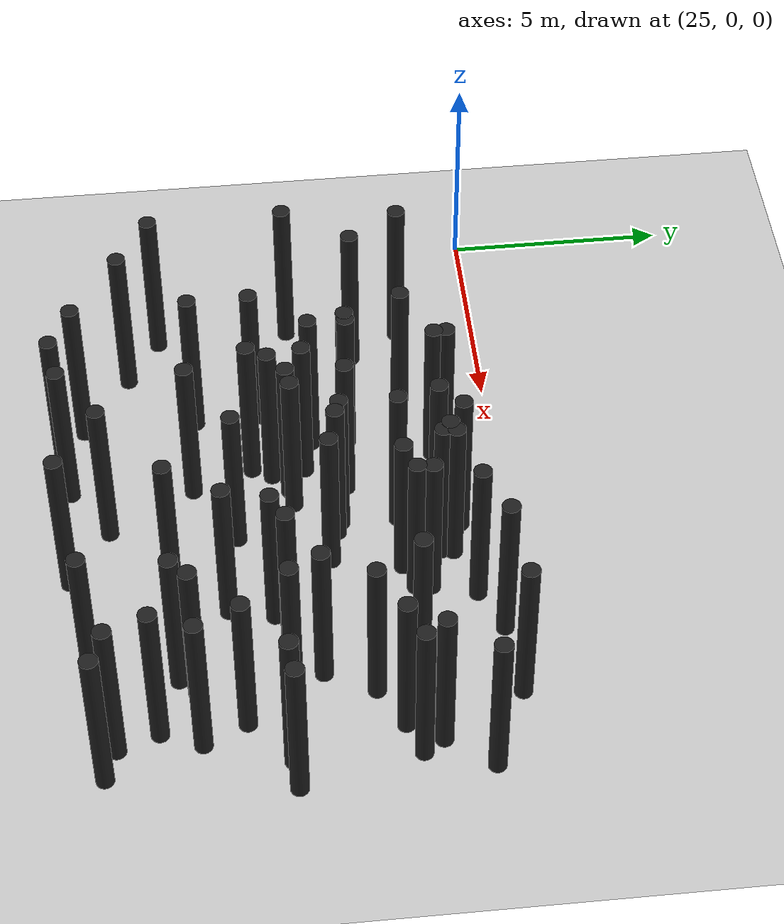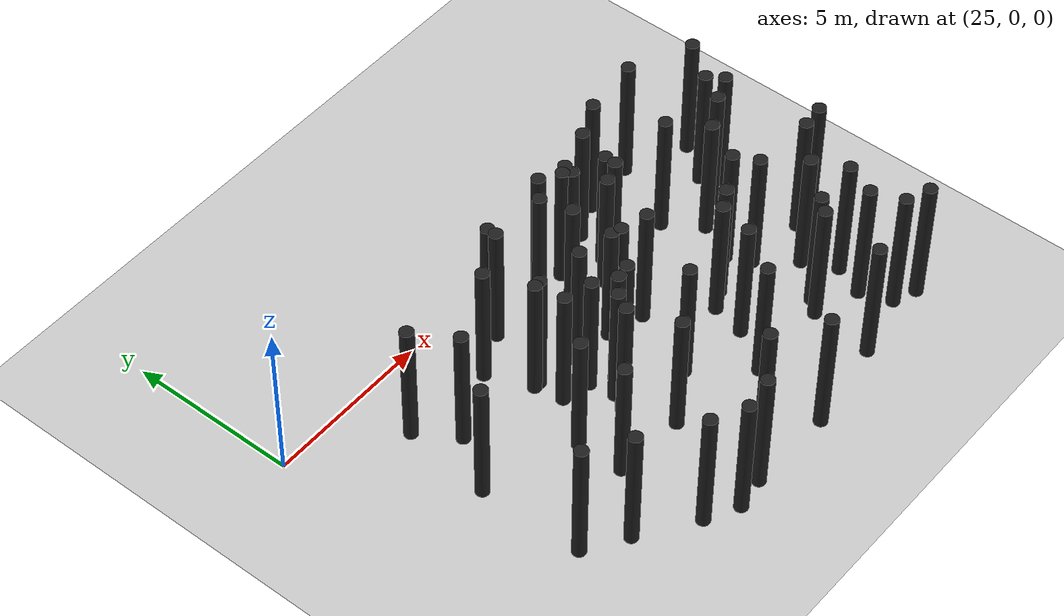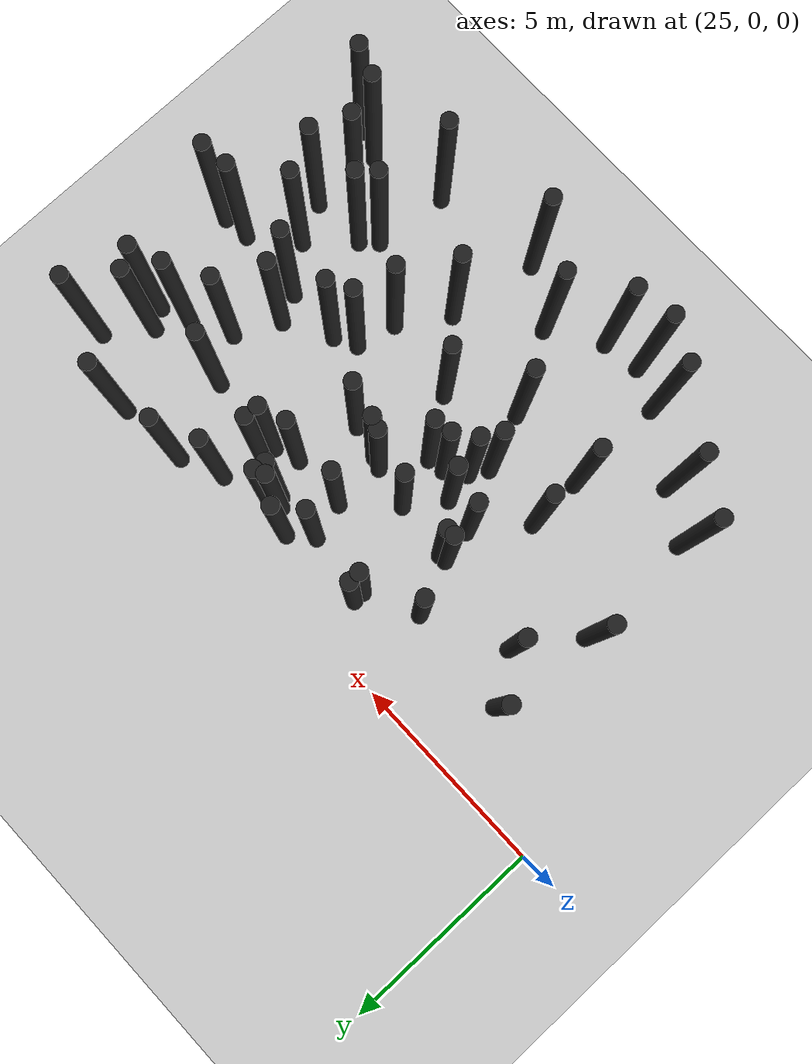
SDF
<sdf version="1.7">
 <world name="default">
  <model name="ground_plane">
   <static>1</static>
   <link name="link">
    <collision name="collision">
     <geometry><plane><normal>0 0 1</normal><size>200 200</size></plane></geometry>
     <surface><friction><ode><mu>100</mu><mu2>50</mu2></ode></friction></surface>
    </collision>
    <visual name="visual">
     <cast_shadows>0</cast_shadows>
     <geometry><plane><normal>0 0 1</normal><size>200 200</size></plane></geometry>
     <material>
      <script><uri>file://media/materials/scripts/gazebo.material</uri><name>Gazebo/Grey</name></script>
     </material>
    </visual>
   </link>
  </model>
  <model name="forest_clone_2_0">
   <pose>39.5517 -7.04721 0.00348 0 -0 0</pose>
   <static>1</static>
   <link name="cylinder::link">
    <inertial>
     <mass>1</mass>
     <inertia><ixx>0.083</ixx><ixy>0</ixy><ixz>0</ixz><iyy>0.083</iyy><iyz>0</iyz><izz>0.083</izz></inertia>
    </inertial>
    <collision name="collision">
     <geometry><cylinder><radius>0.2</radius><length>4</length></cylinder></geometry>
    </collision>
    <visual name="visual">
     <geometry><cylinder><radius>0.2</radius><length>4</length></cylinder></geometry>
     <material>
      <script><uri>file://media/materials/scripts/gazebo.material</uri><name>Gazebo/Black</name></script>
     </material>
    </visual>
    <pose>0 0 2 0 -0 0</pose>
   </link>
  </model>
  <model name="forest_clone_6_0">
   <pose>32.0741 -4.34645 -0.00115 0 -0 0</pose>
   <static>1</static>
   <link name="cylinder::link">
    <inertial>
     <mass>1</mass>
     <inertia><ixx>0.083</ixx><ixy>0</ixy><ixz>0</ixz><iyy>0.083</iyy><iyz>0</iyz><izz>0.083</izz></inertia>
    </inertial>
    <collision name="collision">
     <geometry><cylinder><radius>0.2</radius><length>4</length></cylinder></geometry>
    </collision>
    <visual name="visual">
     <geometry><cylinder><radius>0.2</radius><length>4</length></cylinder></geometry>
     <material>
      <script><uri>file://media/materials/scripts/gazebo.material</uri><name>Gazebo/Black</name></script>
     </material>
    </visual>
    <pose>0 0 2 0 -0 0</pose>
   </link>
  </model>
  <model name="forest_clone_10_0">
   <pose>39.0963 -6.09529 0.00332 0 -0 0</pose>
   <static>1</static>
   <link name="cylinder::link">
    <inertial>
     <mass>1</mass>
     <inertia><ixx>0.083</ixx><ixy>0</ixy><ixz>0</ixz><iyy>0.083</iyy><iyz>0</iyz><izz>0.083</izz></inertia>
    </inertial>
    <collision name="collision">
     <geometry><cylinder><radius>0.2</radius><length>4</length></cylinder></geometry>
    </collision>
    <visual name="visual">
     <geometry><cylinder><radius>0.2</radius><length>4</length></cylinder></geometry>
     <material>
      <script><uri>file://media/materials/scripts/gazebo.material</uri><name>Gazebo/Black</name></script>
     </material>
    </visual>
    <pose>0 0 2 0 -0 0</pose>
   </link>
  </model>
  <model name="forest_clone_21_0">
   <pose>30.4034 -9.34154 -0.0007 0 -0 0</pose>
   <static>1</static>
   <link name="cylinder::link">
    <inertial>
     <mass>1</mass>
     <inertia><ixx>0.083</ixx><ixy>0</ixy><ixz>0</ixz><iyy>0.083</iyy><iyz>0</iyz><izz>0.083</izz></inertia>
    </inertial>
    <collision name="collision">
     <geometry><cylinder><radius>0.2</radius><length>4</length></cylinder></geometry>
    </collision>
    <visual name="visual">
     <geometry><cylinder><radius>0.2</radius><length>4</length></cylinder></geometry>
     <material>
      <script><uri>file://media/materials/scripts/gazebo.material</uri><name>Gazebo/Black</name></script>
     </material>
    </visual>
    <pose>0 0 2 0 -0 0</pose>
   </link>
  </model>
  <model name="forest_clone_26_0">
   <pose>28.6033 -2.97139 0.00277 0 -0 0</pose>
   <static>1</static>
   <link name="cylinder::link">
    <inertial>
     <mass>1</mass>
     <inertia><ixx>0.083</ixx><ixy>0</ixy><ixz>0</ixz><iyy>0.083</iyy><iyz>0</iyz><izz>0.083</izz></inertia>
    </inertial>
    <collision name="collision">
     <geometry><cylinder><radius>0.2</radius><length>4</length></cylinder></geometry>
    </collision>
    <visual name="visual">
     <geometry><cylinder><radius>0.2</radius><length>4</length></cylinder></geometry>
     <material>
      <script><uri>file://media/materials/scripts/gazebo.material</uri><name>Gazebo/Black</name></script>
     </material>
    </visual>
    <pose>0 0 2 0 -0 0</pose>
   </link>
  </model>
  <model name="forest_clone_30_0">
   <pose>31.2475 -4.13791 -0.00402 0 -0 0</pose>
   <static>1</static>
   <link name="cylinder::link">
    <inertial>
     <mass>1</mass>
     <inertia><ixx>0.083</ixx><ixy>0</ixy><ixz>0</ixz><iyy>0.083</iyy><iyz>0</iyz><izz>0.083</izz></inertia>
    </inertial>
    <collision name="collision">
     <geometry><cylinder><radius>0.2</radius><length>4</length></cylinder></geometry>
    </collision>
    <visual name="visual">
     <geometry><cylinder><radius>0.2</radius><length>4</length></cylinder></geometry>
     <material>
      <script><uri>file://media/materials/scripts/gazebo.material</uri><name>Gazebo/Black</name></script>
     </material>
    </visual>
    <pose>0 0 2 0 -0 0</pose>
   </link>
  </model>
  <model name="forest_clone_31_0">
   <pose>35.7719 -2.19632 0.00463 0 -0 0</pose>
   <static>1</static>
   <link name="cylinder::link">
    <inertial>
     <mass>1</mass>
     <inertia><ixx>0.083</ixx><ixy>0</ixy><ixz>0</ixz><iyy>0.083</iyy><iyz>0</iyz><izz>0.083</izz></inertia>
    </inertial>
    <collision name="collision">
     <geometry><cylinder><radius>0.2</radius><length>4</length></cylinder></geometry>
    </collision>
    <visual name="visual">
     <geometry><cylinder><radius>0.2</radius><length>4</length></cylinder></geometry>
     <material>
      <script><uri>file://media/materials/scripts/gazebo.material</uri><name>Gazebo/Black</name></script>
     </material>
    </visual>
    <pose>0 0 2 0 -0 0</pose>
   </link>
  </model>
  <model name="forest_clone_35_0">
   <pose>40.2155 -9.10501 0.00091 0 -0 0</pose>
   <static>1</static>
   <link name="cylinder::link">
    <inertial>
     <mass>1</mass>
     <inertia><ixx>0.083</ixx><ixy>0</ixy><ixz>0</ixz><iyy>0.083</iyy><iyz>0</iyz><izz>0.083</izz></inertia>
    </inertial>
    <collision name="collision">
     <geometry><cylinder><radius>0.2</radius><length>4</length></cylinder></geometry>
    </collision>
    <visual name="visual">
     <geometry><cylinder><radius>0.2</radius><length>4</length></cylinder></geometry>
     <material>
      <script><uri>file://media/materials/scripts/gazebo.material</uri><name>Gazebo/Black</name></script>
     </material>
    </visual>
    <pose>0 0 2 0 -0 0</pose>
   </link>
  </model>
  <model name="forest_clone_38_0">
   <pose>32.3014 -9.67837 -0.00198 0 -0 0</pose>
   <static>1</static>
   <link name="cylinder::link">
    <inertial>
     <mass>1</mass>
     <inertia><ixx>0.083</ixx><ixy>0</ixy><ixz>0</ixz><iyy>0.083</iyy><iyz>0</iyz><izz>0.083</izz></inertia>
    </inertial>
    <collision name="collision">
     <geometry><cylinder><radius>0.2</radius><length>4</length></cylinder></geometry>
    </collision>
    <visual name="visual">
     <geometry><cylinder><radius>0.2</radius><length>4</length></cylinder></geometry>
     <material>
      <script><uri>file://media/materials/scripts/gazebo.material</uri><name>Gazebo/Black</name></script>
     </material>
    </visual>
    <pose>0 0 2 0 -0 0</pose>
   </link>
  </model>
  <model name="forest_clone_46_0">
   <pose>36.0803 -0.862235 -0.00083 0 -0 0</pose>
   <static>1</static>
   <link name="cylinder::link">
    <inertial>
     <mass>1</mass>
     <inertia><ixx>0.083</ixx><ixy>0</ixy><ixz>0</ixz><iyy>0.083</iyy><iyz>0</iyz><izz>0.083</izz></inertia>
    </inertial>
    <collision name="collision">
     <geometry><cylinder><radius>0.2</radius><length>4</length></cylinder></geometry>
    </collision>
    <visual name="visual">
     <geometry><cylinder><radius>0.2</radius><length>4</length></cylinder></geometry>
     <material>
      <script><uri>file://media/materials/scripts/gazebo.material</uri><name>Gazebo/Black</name></script>
     </material>
    </visual>
    <pose>0 0 2 0 -0 0</pose>
   </link>
  </model>
  <model name="forest_clone_52_0">
   <pose>33.5501 -8.8399 0.00296 0 -0 0</pose>
   <static>1</static>
   <link name="cylinder::link">
    <inertial>
     <mass>1</mass>
     <inertia><ixx>0.083</ixx><ixy>0</ixy><ixz>0</ixz><iyy>0.083</iyy><iyz>0</iyz><izz>0.083</izz></inertia>
    </inertial>
    <collision name="collision">
     <geometry><cylinder><radius>0.2</radius><length>4</length></cylinder></geometry>
    </collision>
    <visual name="visual">
     <geometry><cylinder><radius>0.2</radius><length>4</length></cylinder></geometry>
     <material>
      <script><uri>file://media/materials/scripts/gazebo.material</uri><name>Gazebo/Black</name></script>
     </material>
    </visual>
    <pose>0 0 2 0 -0 0</pose>
   </link>
  </model>
  <model name="forest_clone_56_0">
   <pose>27.6638 -7.53181 0.00204 0 -0 0</pose>
   <static>1</static>
   <link name="cylinder::link">
    <inertial>
     <mass>1</mass>
     <inertia><ixx>0.083</ixx><ixy>0</ixy><ixz>0</ixz><iyy>0.083</iyy><iyz>0</iyz><izz>0.083</izz></inertia>
    </inertial>
    <collision name="collision">
     <geometry><cylinder><radius>0.2</radius><length>4</length></cylinder></geometry>
    </collision>
    <visual name="visual">
     <geometry><cylinder><radius>0.2</radius><length>4</length></cylinder></geometry>
     <material>
      <script><uri>file://media/materials/scripts/gazebo.material</uri><name>Gazebo/Black</name></script>
     </material>
    </visual>
    <pose>0 0 2 0 -0 0</pose>
   </link>
  </model>
  <model name="forest_clone_59_0">
   <pose>40.643 -1.04341 -0.00279 0 -0 0</pose>
   <static>1</static>
   <link name="cylinder::link">
    <inertial>
     <mass>1</mass>
     <inertia><ixx>0.083</ixx><ixy>0</ixy><ixz>0</ixz><iyy>0.083</iyy><iyz>0</iyz><izz>0.083</izz></inertia>
    </inertial>
    <collision name="collision">
     <geometry><cylinder><radius>0.2</radius><length>4</length></cylinder></geometry>
    </collision>
    <visual name="visual">
     <geometry><cylinder><radius>0.2</radius><length>4</length></cylinder></geometry>
     <material>
      <script><uri>file://media/materials/scripts/gazebo.material</uri><name>Gazebo/Black</name></script>
     </material>
    </visual>
    <pose>0 0 2 0 -0 0</pose>
   </link>
  </model>
  <model name="forest_clone_66_0">
   <pose>39.4379 -2.79971 -0.00207 0 -0 0</pose>
   <static>1</static>
   <link name="cylinder::link">
    <inertial>
     <mass>1</mass>
     <inertia><ixx>0.083</ixx><ixy>0</ixy><ixz>0</ixz><iyy>0.083</iyy><iyz>0</iyz><izz>0.083</izz></inertia>
    </inertial>
    <collision name="collision">
     <geometry><cylinder><radius>0.2</radius><length>4</length></cylinder></geometry>
    </collision>
    <visual name="visual">
     <geometry><cylinder><radius>0.2</radius><length>4</length></cylinder></geometry>
     <material>
      <script><uri>file://media/materials/scripts/gazebo.material</uri><name>Gazebo/Black</name></script>
     </material>
    </visual>
    <pose>0 0 2 0 -0 0</pose>
   </link>
  </model>
  <model name="forest_clone_72_0">
   <pose>30.5704 -2.01379 -0.00198 0 -0 0</pose>
   <static>1</static>
   <link name="cylinder::link">
    <inertial>
     <mass>1</mass>
     <inertia><ixx>0.083</ixx><ixy>0</ixy><ixz>0</ixz><iyy>0.083</iyy><iyz>0</iyz><izz>0.083</izz></inertia>
    </inertial>
    <collision name="collision">
     <geometry><cylinder><radius>0.2</radius><length>4</length></cylinder></geometry>
    </collision>
    <visual name="visual">
     <geometry><cylinder><radius>0.2</radius><length>4</length></cylinder></geometry>
     <material>
      <script><uri>file://media/materials/scripts/gazebo.material</uri><name>Gazebo/Black</name></script>
     </material>
    </visual>
    <pose>0 0 2 0 -0 0</pose>
   </link>
  </model>
  <model name="forest_clone_78_0">
   <pose>31.0882 -3.31339 0.00174 0 -0 0</pose>
   <static>1</static>
   <link name="cylinder::link">
    <inertial>
     <mass>1</mass>
     <inertia><ixx>0.083</ixx><ixy>0</ixy><ixz>0</ixz><iyy>0.083</iyy><iyz>0</iyz><izz>0.083</izz></inertia>
    </inertial>
    <collision name="collision">
     <geometry><cylinder><radius>0.2</radius><length>4</length></cylinder></geometry>
    </collision>
    <visual name="visual">
     <geometry><cylinder><radius>0.2</radius><length>4</length></cylinder></geometry>
     <material>
      <script><uri>file://media/materials/scripts/gazebo.material</uri><name>Gazebo/Black</name></script>
     </material>
    </visual>
    <pose>0 0 2 0 -0 0</pose>
   </link>
  </model>
  <model name="forest_clone_94_0">
   <pose>35.1597 -2.41917 5e-05 0 -0 0</pose>
   <static>1</static>
   <link name="cylinder::link">
    <inertial>
     <mass>1</mass>
     <inertia><ixx>0.083</ixx><ixy>0</ixy><ixz>0</ixz><iyy>0.083</iyy><iyz>0</iyz><izz>0.083</izz></inertia>
    </inertial>
    <collision name="collision">
     <geometry><cylinder><radius>0.2</radius><length>4</length></cylinder></geometry>
    </collision>
    <visual name="visual">
     <geometry><cylinder><radius>0.2</radius><length>4</length></cylinder></geometry>
     <material>
      <script><uri>file://media/materials/scripts/gazebo.material</uri><name>Gazebo/Black</name></script>
     </material>
    </visual>
    <pose>0 0 2 0 -0 0</pose>
   </link>
  </model>
  <model name="forest_clone_95_0">
   <pose>40.8117 -5.14471 -0.00051 0 -0 0</pose>
   <static>1</static>
   <link name="cylinder::link">
    <inertial>
     <mass>1</mass>
     <inertia><ixx>0.083</ixx><ixy>0</ixy><ixz>0</ixz><iyy>0.083</iyy><iyz>0</iyz><izz>0.083</izz></inertia>
    </inertial>
    <collision name="collision">
     <geometry><cylinder><radius>0.2</radius><length>4</length></cylinder></geometry>
    </collision>
    <visual name="visual">
     <geometry><cylinder><radius>0.2</radius><length>4</length></cylinder></geometry>
     <material>
      <script><uri>file://media/materials/scripts/gazebo.material</uri><name>Gazebo/Black</name></script>
     </material>
    </visual>
    <pose>0 0 2 0 -0 0</pose>
   </link>
  </model>
  <model name="forest_clone_99_0">
   <pose>33.7554 -2.39118 -0.00017 0 -0 0</pose>
   <static>1</static>
   <link name="cylinder::link">
    <inertial>
     <mass>1</mass>
     <inertia><ixx>0.083</ixx><ixy>0</ixy><ixz>0</ixz><iyy>0.083</iyy><iyz>0</iyz><izz>0.083</izz></inertia>
    </inertial>
    <collision name="collision">
     <geometry><cylinder><radius>0.2</radius><length>4</length></cylinder></geometry>
    </collision>
    <visual name="visual">
     <geometry><cylinder><radius>0.2</radius><length>4</length></cylinder></geometry>
     <material>
      <script><uri>file://media/materials/scripts/gazebo.material</uri><name>Gazebo/Black</name></script>
     </material>
    </visual>
    <pose>0 0 2 0 -0 0</pose>
   </link>
  </model>
  <model name="forest_clone_100_0">
   <pose>33.516 -1.47695 0.00432 0 -0 0</pose>
   <static>1</static>
   <link name="cylinder::link">
    <inertial>
     <mass>1</mass>
     <inertia><ixx>0.083</ixx><ixy>0</ixy><ixz>0</ixz><iyy>0.083</iyy><iyz>0</iyz><izz>0.083</izz></inertia>
    </inertial>
    <collision name="collision">
     <geometry><cylinder><radius>0.2</radius><length>4</length></cylinder></geometry>
    </collision>
    <visual name="visual">
     <geometry><cylinder><radius>0.2</radius><length>4</length></cylinder></geometry>
     <material>
      <script><uri>file://media/materials/scripts/gazebo.material</uri><name>Gazebo/Black</name></script>
     </material>
    </visual>
    <pose>0 0 2 0 -0 0</pose>
   </link>
  </model>
  <model name="forest_clone_107_0">
   <pose>31.8364 -1.127 0.00163 0 -0 0</pose>
   <static>1</static>
   <link name="cylinder::link">
    <inertial>
     <mass>1</mass>
     <inertia><ixx>0.083</ixx><ixy>0</ixy><ixz>0</ixz><iyy>0.083</iyy><iyz>0</iyz><izz>0.083</izz></inertia>
    </inertial>
    <collision name="collision">
     <geometry><cylinder><radius>0.2</radius><length>4</length></cylinder></geometry>
    </collision>
    <visual name="visual">
     <geometry><cylinder><radius>0.2</radius><length>4</length></cylinder></geometry>
     <material>
      <script><uri>file://media/materials/scripts/gazebo.material</uri><name>Gazebo/Black</name></script>
     </material>
    </visual>
    <pose>0 0 2 0 -0 0</pose>
   </link>
  </model>
  <model name="forest_clone_119_0">
   <pose>34.6096 -1.36163 0.00426 0 -0 0</pose>
   <static>1</static>
   <link name="cylinder::link">
    <inertial>
     <mass>1</mass>
     <inertia><ixx>0.083</ixx><ixy>0</ixy><ixz>0</ixz><iyy>0.083</iyy><iyz>0</iyz><izz>0.083</izz></inertia>
    </inertial>
    <collision name="collision">
     <geometry><cylinder><radius>0.2</radius><length>4</length></cylinder></geometry>
    </collision>
    <visual name="visual">
     <geometry><cylinder><radius>0.2</radius><length>4</length></cylinder></geometry>
     <material>
      <script><uri>file://media/materials/scripts/gazebo.material</uri><name>Gazebo/Black</name></script>
     </material>
    </visual>
    <pose>0 0 2 0 -0 0</pose>
   </link>
  </model>
  <model name="forest_clone_121_0">
   <pose>28.8281 -8.27597 -0.00324 0 -0 0</pose>
   <static>1</static>
   <link name="cylinder::link">
    <inertial>
     <mass>1</mass>
     <inertia><ixx>0.083</ixx><ixy>0</ixy><ixz>0</ixz><iyy>0.083</iyy><iyz>0</iyz><izz>0.083</izz></inertia>
    </inertial>
    <collision name="collision">
     <geometry><cylinder><radius>0.2</radius><length>4</length></cylinder></geometry>
    </collision>
    <visual name="visual">
     <geometry><cylinder><radius>0.2</radius><length>4</length></cylinder></geometry>
     <material>
      <script><uri>file://media/materials/scripts/gazebo.material</uri><name>Gazebo/Black</name></script>
     </material>
    </visual>
    <pose>0 0 2 0 -0 0</pose>
   </link>
  </model>
  <model name="forest_clone_126_0">
   <pose>38.1766 -7.10499 -0.00205 0 -0 0</pose>
   <static>1</static>
   <link name="cylinder::link">
    <inertial>
     <mass>1</mass>
     <inertia><ixx>0.083</ixx><ixy>0</ixy><ixz>0</ixz><iyy>0.083</iyy><iyz>0</iyz><izz>0.083</izz></inertia>
    </inertial>
    <collision name="collision">
     <geometry><cylinder><radius>0.2</radius><length>4</length></cylinder></geometry>
    </collision>
    <visual name="visual">
     <geometry><cylinder><radius>0.2</radius><length>4</length></cylinder></geometry>
     <material>
      <script><uri>file://media/materials/scripts/gazebo.material</uri><name>Gazebo/Black</name></script>
     </material>
    </visual>
    <pose>0 0 2 0 -0 0</pose>
   </link>
  </model>
  <model name="forest_clone_132_0">
   <pose>33.7512 -3.66778 -0.00216 0 -0 0</pose>
   <static>1</static>
   <link name="cylinder::link">
    <inertial>
     <mass>1</mass>
     <inertia><ixx>0.083</ixx><ixy>0</ixy><ixz>0</ixz><iyy>0.083</iyy><iyz>0</iyz><izz>0.083</izz></inertia>
    </inertial>
    <collision name="collision">
     <geometry><cylinder><radius>0.2</radius><length>4</length></cylinder></geometry>
    </collision>
    <visual name="visual">
     <geometry><cylinder><radius>0.2</radius><length>4</length></cylinder></geometry>
     <material>
      <script><uri>file://media/materials/scripts/gazebo.material</uri><name>Gazebo/Black</name></script>
     </material>
    </visual>
    <pose>0 0 2 0 -0 0</pose>
   </link>
  </model>
  <model name="forest_clone_133_0">
   <pose>34.0287 -3.77128 -0.00163 0 -0 0</pose>
   <static>1</static>
   <link name="cylinder::link">
    <inertial>
     <mass>1</mass>
     <inertia><ixx>0.083</ixx><ixy>0</ixy><ixz>0</ixz><iyy>0.083</iyy><iyz>0</iyz><izz>0.083</izz></inertia>
    </inertial>
    <collision name="collision">
     <geometry><cylinder><radius>0.2</radius><length>4</length></cylinder></geometry>
    </collision>
    <visual name="visual">
     <geometry><cylinder><radius>0.2</radius><length>4</length></cylinder></geometry>
     <material>
      <script><uri>file://media/materials/scripts/gazebo.material</uri><name>Gazebo/Black</name></script>
     </material>
    </visual>
    <pose>0 0 2 0 -0 0</pose>
   </link>
  </model>
  <model name="forest_clone_148_0">
   <pose>31.2798 -3.30423 -0.00259 0 -0 0</pose>
   <static>1</static>
   <link name="cylinder::link">
    <inertial>
     <mass>1</mass>
     <inertia><ixx>0.083</ixx><ixy>0</ixy><ixz>0</ixz><iyy>0.083</iyy><iyz>0</iyz><izz>0.083</izz></inertia>
    </inertial>
    <collision name="collision">
     <geometry><cylinder><radius>0.2</radius><length>4</length></cylinder></geometry>
    </collision>
    <visual name="visual">
     <geometry><cylinder><radius>0.2</radius><length>4</length></cylinder></geometry>
     <material>
      <script><uri>file://media/materials/scripts/gazebo.material</uri><name>Gazebo/Black</name></script>
     </material>
    </visual>
    <pose>0 0 2 0 -0 0</pose>
   </link>
  </model>
  <model name="forest_clone_15_1">
   <pose>31.9588 -5.54718 -0.00183 0 -0 0</pose>
   <static>1</static>
   <link name="cylinder::link">
    <inertial>
     <mass>1</mass>
     <inertia><ixx>0.083</ixx><ixy>0</ixy><ixz>0</ixz><iyy>0.083</iyy><iyz>0</iyz><izz>0.083</izz></inertia>
    </inertial>
    <collision name="collision">
     <geometry><cylinder><radius>0.2</radius><length>4</length></cylinder></geometry>
    </collision>
    <visual name="visual">
     <geometry><cylinder><radius>0.2</radius><length>4</length></cylinder></geometry>
     <material>
      <script><uri>file://media/materials/scripts/gazebo.material</uri><name>Gazebo/Black</name></script>
     </material>
    </visual>
    <pose>0 0 2 0 -0 0</pose>
   </link>
  </model>
  <model name="forest_clone_41_1">
   <pose>37.6235 -9.31534 0.00483 0 -0 0</pose>
   <static>1</static>
   <link name="cylinder::link">
    <inertial>
     <mass>1</mass>
     <inertia><ixx>0.083</ixx><ixy>0</ixy><ixz>0</ixz><iyy>0.083</iyy><iyz>0</iyz><izz>0.083</izz></inertia>
    </inertial>
    <collision name="collision">
     <geometry><cylinder><radius>0.2</radius><length>4</length></cylinder></geometry>
    </collision>
    <visual name="visual">
     <geometry><cylinder><radius>0.2</radius><length>4</length></cylinder></geometry>
     <material>
      <script><uri>file://media/materials/scripts/gazebo.material</uri><name>Gazebo/Black</name></script>
     </material>
    </visual>
    <pose>0 0 2 0 -0 0</pose>
   </link>
  </model>
  <model name="forest_clone_45_1">
   <pose>30.3558 -6.75543 -0.00163 0 -0 0</pose>
   <static>1</static>
   <link name="cylinder::link">
    <inertial>
     <mass>1</mass>
     <inertia><ixx>0.083</ixx><ixy>0</ixy><ixz>0</ixz><iyy>0.083</iyy><iyz>0</iyz><izz>0.083</izz></inertia>
    </inertial>
    <collision name="collision">
     <geometry><cylinder><radius>0.2</radius><length>4</length></cylinder></geometry>
    </collision>
    <visual name="visual">
     <geometry><cylinder><radius>0.2</radius><length>4</length></cylinder></geometry>
     <material>
      <script><uri>file://media/materials/scripts/gazebo.material</uri><name>Gazebo/Black</name></script>
     </material>
    </visual>
    <pose>0 0 2 0 -0 0</pose>
   </link>
  </model>
  <model name="forest_clone_66_1">
   <pose>39.176 -7.93457 -0.00442 0 -0 0</pose>
   <static>1</static>
   <link name="cylinder::link">
    <inertial>
     <mass>1</mass>
     <inertia><ixx>0.083</ixx><ixy>0</ixy><ixz>0</ixz><iyy>0.083</iyy><iyz>0</iyz><izz>0.083</izz></inertia>
    </inertial>
    <collision name="collision">
     <geometry><cylinder><radius>0.2</radius><length>4</length></cylinder></geometry>
    </collision>
    <visual name="visual">
     <geometry><cylinder><radius>0.2</radius><length>4</length></cylinder></geometry>
     <material>
      <script><uri>file://media/materials/scripts/gazebo.material</uri><name>Gazebo/Black</name></script>
     </material>
    </visual>
    <pose>0 0 2 0 -0 0</pose>
   </link>
  </model>
  <model name="forest_clone_77_1">
   <pose>38.2731 -5.07072 -0.00367 0 -0 0</pose>
   <static>1</static>
   <link name="cylinder::link">
    <inertial>
     <mass>1</mass>
     <inertia><ixx>0.083</ixx><ixy>0</ixy><ixz>0</ixz><iyy>0.083</iyy><iyz>0</iyz><izz>0.083</izz></inertia>
    </inertial>
    <collision name="collision">
     <geometry><cylinder><radius>0.2</radius><length>4</length></cylinder></geometry>
    </collision>
    <visual name="visual">
     <geometry><cylinder><radius>0.2</radius><length>4</length></cylinder></geometry>
     <material>
      <script><uri>file://media/materials/scripts/gazebo.material</uri><name>Gazebo/Black</name></script>
     </material>
    </visual>
    <pose>0 0 2 0 -0 0</pose>
   </link>
  </model>
  <model name="forest_clone_79_1">
   <pose>40.1319 -5.21055 -0.00171 0 -0 0</pose>
   <static>1</static>
   <link name="cylinder::link">
    <inertial>
     <mass>1</mass>
     <inertia><ixx>0.083</ixx><ixy>0</ixy><ixz>0</ixz><iyy>0.083</iyy><iyz>0</iyz><izz>0.083</izz></inertia>
    </inertial>
    <collision name="collision">
     <geometry><cylinder><radius>0.2</radius><length>4</length></cylinder></geometry>
    </collision>
    <visual name="visual">
     <geometry><cylinder><radius>0.2</radius><length>4</length></cylinder></geometry>
     <material>
      <script><uri>file://media/materials/scripts/gazebo.material</uri><name>Gazebo/Black</name></script>
     </material>
    </visual>
    <pose>0 0 2 0 -0 0</pose>
   </link>
  </model>
  <model name="forest_clone_81_1">
   <pose>34.9069 -9.74689 -0.00415 0 -0 0</pose>
   <static>1</static>
   <link name="cylinder::link">
    <inertial>
     <mass>1</mass>
     <inertia><ixx>0.083</ixx><ixy>0</ixy><ixz>0</ixz><iyy>0.083</iyy><iyz>0</iyz><izz>0.083</izz></inertia>
    </inertial>
    <collision name="collision">
     <geometry><cylinder><radius>0.2</radius><length>4</length></cylinder></geometry>
    </collision>
    <visual name="visual">
     <geometry><cylinder><radius>0.2</radius><length>4</length></cylinder></geometry>
     <material>
      <script><uri>file://media/materials/scripts/gazebo.material</uri><name>Gazebo/Black</name></script>
     </material>
    </visual>
    <pose>0 0 2 0 -0 0</pose>
   </link>
  </model>
  <model name="forest_clone_93_1">
   <pose>37.9434 -4.40244 -0.00101 0 -0 0</pose>
   <static>1</static>
   <link name="cylinder::link">
    <inertial>
     <mass>1</mass>
     <inertia><ixx>0.083</ixx><ixy>0</ixy><ixz>0</ixz><iyy>0.083</iyy><iyz>0</iyz><izz>0.083</izz></inertia>
    </inertial>
    <collision name="collision">
     <geometry><cylinder><radius>0.2</radius><length>4</length></cylinder></geometry>
    </collision>
    <visual name="visual">
     <geometry><cylinder><radius>0.2</radius><length>4</length></cylinder></geometry>
     <material>
      <script><uri>file://media/materials/scripts/gazebo.material</uri><name>Gazebo/Black</name></script>
     </material>
    </visual>
    <pose>0 0 2 0 -0 0</pose>
   </link>
  </model>
  <model name="forest_clone_103_1">
   <pose>37.8269 -7.46929 0.00149 0 -0 0</pose>
   <static>1</static>
   <link name="cylinder::link">
    <inertial>
     <mass>1</mass>
     <inertia><ixx>0.083</ixx><ixy>0</ixy><ixz>0</ixz><iyy>0.083</iyy><iyz>0</iyz><izz>0.083</izz></inertia>
    </inertial>
    <collision name="collision">
     <geometry><cylinder><radius>0.2</radius><length>4</length></cylinder></geometry>
    </collision>
    <visual name="visual">
     <geometry><cylinder><radius>0.2</radius><length>4</length></cylinder></geometry>
     <material>
      <script><uri>file://media/materials/scripts/gazebo.material</uri><name>Gazebo/Black</name></script>
     </material>
    </visual>
    <pose>0 0 2 0 -0 0</pose>
   </link>
  </model>
  <model name="forest_clone_123_1">
   <pose>37.8065 -2.29741 0.00377 0 -0 0</pose>
   <static>1</static>
   <link name="cylinder::link">
    <inertial>
     <mass>1</mass>
     <inertia><ixx>0.083</ixx><ixy>0</ixy><ixz>0</ixz><iyy>0.083</iyy><iyz>0</iyz><izz>0.083</izz></inertia>
    </inertial>
    <collision name="collision">
     <geometry><cylinder><radius>0.2</radius><length>4</length></cylinder></geometry>
    </collision>
    <visual name="visual">
     <geometry><cylinder><radius>0.2</radius><length>4</length></cylinder></geometry>
     <material>
      <script><uri>file://media/materials/scripts/gazebo.material</uri><name>Gazebo/Black</name></script>
     </material>
    </visual>
    <pose>0 0 2 0 -0 0</pose>
   </link>
  </model>
  <model name="forest_clone_124_1">
   <pose>38.8299 -0.249527 0.00298 0 -0 0</pose>
   <static>1</static>
   <link name="cylinder::link">
    <inertial>
     <mass>1</mass>
     <inertia><ixx>0.083</ixx><ixy>0</ixy><ixz>0</ixz><iyy>0.083</iyy><iyz>0</iyz><izz>0.083</izz></inertia>
    </inertial>
    <collision name="collision">
     <geometry><cylinder><radius>0.2</radius><length>4</length></cylinder></geometry>
    </collision>
    <visual name="visual">
     <geometry><cylinder><radius>0.2</radius><length>4</length></cylinder></geometry>
     <material>
      <script><uri>file://media/materials/scripts/gazebo.material</uri><name>Gazebo/Black</name></script>
     </material>
    </visual>
    <pose>0 0 2 0 -0 0</pose>
   </link>
  </model>
  <model name="forest_clone_137_1">
   <pose>40.184 -2.50931 -0.0043 0 -0 0</pose>
   <static>1</static>
   <link name="cylinder::link">
    <inertial>
     <mass>1</mass>
     <inertia><ixx>0.083</ixx><ixy>0</ixy><ixz>0</ixz><iyy>0.083</iyy><iyz>0</iyz><izz>0.083</izz></inertia>
    </inertial>
    <collision name="collision">
     <geometry><cylinder><radius>0.2</radius><length>4</length></cylinder></geometry>
    </collision>
    <visual name="visual">
     <geometry><cylinder><radius>0.2</radius><length>4</length></cylinder></geometry>
     <material>
      <script><uri>file://media/materials/scripts/gazebo.material</uri><name>Gazebo/Black</name></script>
     </material>
    </visual>
    <pose>0 0 2 0 -0 0</pose>
   </link>
  </model>
  <model name="forest_clone_145_1">
   <pose>34.8491 -1.25199 0.00375 0 -0 0</pose>
   <static>1</static>
   <link name="cylinder::link">
    <inertial>
     <mass>1</mass>
     <inertia><ixx>0.083</ixx><ixy>0</ixy><ixz>0</ixz><iyy>0.083</iyy><iyz>0</iyz><izz>0.083</izz></inertia>
    </inertial>
    <collision name="collision">
     <geometry><cylinder><radius>0.2</radius><length>4</length></cylinder></geometry>
    </collision>
    <visual name="visual">
     <geometry><cylinder><radius>0.2</radius><length>4</length></cylinder></geometry>
     <material>
      <script><uri>file://media/materials/scripts/gazebo.material</uri><name>Gazebo/Black</name></script>
     </material>
    </visual>
    <pose>0 0 2 0 -0 0</pose>
   </link>
  </model>
  <model name="forest_clone_147_1">
   <pose>37.099 -0.405451 0.00094 0 -0 0</pose>
   <static>1</static>
   <link name="cylinder::link">
    <inertial>
     <mass>1</mass>
     <inertia><ixx>0.083</ixx><ixy>0</ixy><ixz>0</ixz><iyy>0.083</iyy><iyz>0</iyz><izz>0.083</izz></inertia>
    </inertial>
    <collision name="collision">
     <geometry><cylinder><radius>0.2</radius><length>4</length></cylinder></geometry>
    </collision>
    <visual name="visual">
     <geometry><cylinder><radius>0.2</radius><length>4</length></cylinder></geometry>
     <material>
      <script><uri>file://media/materials/scripts/gazebo.material</uri><name>Gazebo/Black</name></script>
     </material>
    </visual>
    <pose>0 0 2 0 -0 0</pose>
   </link>
  </model>
  <model name="forest_clone_14_2">
   <pose>31.8423 -1.40272 0.00255 0 -0 0</pose>
   <static>1</static>
   <link name="cylinder::link">
    <inertial>
     <mass>1</mass>
     <inertia><ixx>0.083</ixx><ixy>0</ixy><ixz>0</ixz><iyy>0.083</iyy><iyz>0</iyz><izz>0.083</izz></inertia>
    </inertial>
    <collision name="collision">
     <geometry><cylinder><radius>0.2</radius><length>4</length></cylinder></geometry>
    </collision>
    <visual name="visual">
     <geometry><cylinder><radius>0.2</radius><length>4</length></cylinder></geometry>
     <material>
      <script><uri>file://media/materials/scripts/gazebo.material</uri><name>Gazebo/Black</name></script>
     </material>
    </visual>
    <pose>0 0 2 0 -0 0</pose>
   </link>
  </model>
  <model name="forest_clone_17_2">
   <pose>31.3503 -9.82596 0.00057 0 -0 0</pose>
   <static>1</static>
   <link name="cylinder::link">
    <inertial>
     <mass>1</mass>
     <inertia><ixx>0.083</ixx><ixy>0</ixy><ixz>0</ixz><iyy>0.083</iyy><iyz>0</iyz><izz>0.083</izz></inertia>
    </inertial>
    <collision name="collision">
     <geometry><cylinder><radius>0.2</radius><length>4</length></cylinder></geometry>
    </collision>
    <visual name="visual">
     <geometry><cylinder><radius>0.2</radius><length>4</length></cylinder></geometry>
     <material>
      <script><uri>file://media/materials/scripts/gazebo.material</uri><name>Gazebo/Black</name></script>
     </material>
    </visual>
    <pose>0 0 2 0 -0 0</pose>
   </link>
  </model>
  <model name="forest_clone_21_2">
   <pose>34.7942 -1.52861 -0.00399 0 -0 0</pose>
   <static>1</static>
   <link name="cylinder::link">
    <inertial>
     <mass>1</mass>
     <inertia><ixx>0.083</ixx><ixy>0</ixy><ixz>0</ixz><iyy>0.083</iyy><iyz>0</iyz><izz>0.083</izz></inertia>
    </inertial>
    <collision name="collision">
     <geometry><cylinder><radius>0.2</radius><length>4</length></cylinder></geometry>
    </collision>
    <visual name="visual">
     <geometry><cylinder><radius>0.2</radius><length>4</length></cylinder></geometry>
     <material>
      <script><uri>file://media/materials/scripts/gazebo.material</uri><name>Gazebo/Black</name></script>
     </material>
    </visual>
    <pose>0 0 2 0 -0 0</pose>
   </link>
  </model>
  <model name="forest_clone_22_2">
   <pose>32.6828 -4.73788 -0.00057 0 -0 0</pose>
   <static>1</static>
   <link name="cylinder::link">
    <inertial>
     <mass>1</mass>
     <inertia><ixx>0.083</ixx><ixy>0</ixy><ixz>0</ixz><iyy>0.083</iyy><iyz>0</iyz><izz>0.083</izz></inertia>
    </inertial>
    <collision name="collision">
     <geometry><cylinder><radius>0.2</radius><length>4</length></cylinder></geometry>
    </collision>
    <visual name="visual">
     <geometry><cylinder><radius>0.2</radius><length>4</length></cylinder></geometry>
     <material>
      <script><uri>file://media/materials/scripts/gazebo.material</uri><name>Gazebo/Black</name></script>
     </material>
    </visual>
    <pose>0 0 2 0 -0 0</pose>
   </link>
  </model>
  <model name="forest_clone_35_2">
   <pose>35.7954 -1.85438 -0.00411 0 -0 0</pose>
   <static>1</static>
   <link name="cylinder::link">
    <inertial>
     <mass>1</mass>
     <inertia><ixx>0.083</ixx><ixy>0</ixy><ixz>0</ixz><iyy>0.083</iyy><iyz>0</iyz><izz>0.083</izz></inertia>
    </inertial>
    <collision name="collision">
     <geometry><cylinder><radius>0.2</radius><length>4</length></cylinder></geometry>
    </collision>
    <visual name="visual">
     <geometry><cylinder><radius>0.2</radius><length>4</length></cylinder></geometry>
     <material>
      <script><uri>file://media/materials/scripts/gazebo.material</uri><name>Gazebo/Black</name></script>
     </material>
    </visual>
    <pose>0 0 2 0 -0 0</pose>
   </link>
  </model>
  <model name="forest_clone_37_2">
   <pose>39.5137 -8.83723 -0.00065 0 -0 0</pose>
   <static>1</static>
   <link name="cylinder::link">
    <inertial>
     <mass>1</mass>
     <inertia><ixx>0.083</ixx><ixy>0</ixy><ixz>0</ixz><iyy>0.083</iyy><iyz>0</iyz><izz>0.083</izz></inertia>
    </inertial>
    <collision name="collision">
     <geometry><cylinder><radius>0.2</radius><length>4</length></cylinder></geometry>
    </collision>
    <visual name="visual">
     <geometry><cylinder><radius>0.2</radius><length>4</length></cylinder></geometry>
     <material>
      <script><uri>file://media/materials/scripts/gazebo.material</uri><name>Gazebo/Black</name></script>
     </material>
    </visual>
    <pose>0 0 2 0 -0 0</pose>
   </link>
  </model>
  <model name="forest_clone_38_2">
   <pose>34.8341 -3.97281 0.00089 0 -0 0</pose>
   <static>1</static>
   <link name="cylinder::link">
    <inertial>
     <mass>1</mass>
     <inertia><ixx>0.083</ixx><ixy>0</ixy><ixz>0</ixz><iyy>0.083</iyy><iyz>0</iyz><izz>0.083</izz></inertia>
    </inertial>
    <collision name="collision">
     <geometry><cylinder><radius>0.2</radius><length>4</length></cylinder></geometry>
    </collision>
    <visual name="visual">
     <geometry><cylinder><radius>0.2</radius><length>4</length></cylinder></geometry>
     <material>
      <script><uri>file://media/materials/scripts/gazebo.material</uri><name>Gazebo/Black</name></script>
     </material>
    </visual>
    <pose>0 0 2 0 -0 0</pose>
   </link>
  </model>
  <model name="forest_clone_43_2">
   <pose>27.8702 -1.81993 0.00425 0 -0 0</pose>
   <static>1</static>
   <link name="cylinder::link">
    <inertial>
     <mass>1</mass>
     <inertia><ixx>0.083</ixx><ixy>0</ixy><ixz>0</ixz><iyy>0.083</iyy><iyz>0</iyz><izz>0.083</izz></inertia>
    </inertial>
    <collision name="collision">
     <geometry><cylinder><radius>0.2</radius><length>4</length></cylinder></geometry>
    </collision>
    <visual name="visual">
     <geometry><cylinder><radius>0.2</radius><length>4</length></cylinder></geometry>
     <material>
      <script><uri>file://media/materials/scripts/gazebo.material</uri><name>Gazebo/Black</name></script>
     </material>
    </visual>
    <pose>0 0 2 0 -0 0</pose>
   </link>
  </model>
  <model name="forest_clone_56_2">
   <pose>32.7058 -3.45291 -0.00048 0 -0 0</pose>
   <static>1</static>
   <link name="cylinder::link">
    <inertial>
     <mass>1</mass>
     <inertia><ixx>0.083</ixx><ixy>0</ixy><ixz>0</ixz><iyy>0.083</iyy><iyz>0</iyz><izz>0.083</izz></inertia>
    </inertial>
    <collision name="collision">
     <geometry><cylinder><radius>0.2</radius><length>4</length></cylinder></geometry>
    </collision>
    <visual name="visual">
     <geometry><cylinder><radius>0.2</radius><length>4</length></cylinder></geometry>
     <material>
      <script><uri>file://media/materials/scripts/gazebo.material</uri><name>Gazebo/Black</name></script>
     </material>
    </visual>
    <pose>0 0 2 0 -0 0</pose>
   </link>
  </model>
  <model name="forest_clone_61_2">
   <pose>38.495 -3.32367 -0.00431 0 -0 0</pose>
   <static>1</static>
   <link name="cylinder::link">
    <inertial>
     <mass>1</mass>
     <inertia><ixx>0.083</ixx><ixy>0</ixy><ixz>0</ixz><iyy>0.083</iyy><iyz>0</iyz><izz>0.083</izz></inertia>
    </inertial>
    <collision name="collision">
     <geometry><cylinder><radius>0.2</radius><length>4</length></cylinder></geometry>
    </collision>
    <visual name="visual">
     <geometry><cylinder><radius>0.2</radius><length>4</length></cylinder></geometry>
     <material>
      <script><uri>file://media/materials/scripts/gazebo.material</uri><name>Gazebo/Black</name></script>
     </material>
    </visual>
    <pose>0 0 2 0 -0 0</pose>
   </link>
  </model>
  <model name="forest_clone_62_2">
   <pose>36.2895 -5.32362 -0.00121 0 -0 0</pose>
   <static>1</static>
   <link name="cylinder::link">
    <inertial>
     <mass>1</mass>
     <inertia><ixx>0.083</ixx><ixy>0</ixy><ixz>0</ixz><iyy>0.083</iyy><iyz>0</iyz><izz>0.083</izz></inertia>
    </inertial>
    <collision name="collision">
     <geometry><cylinder><radius>0.2</radius><length>4</length></cylinder></geometry>
    </collision>
    <visual name="visual">
     <geometry><cylinder><radius>0.2</radius><length>4</length></cylinder></geometry>
     <material>
      <script><uri>file://media/materials/scripts/gazebo.material</uri><name>Gazebo/Black</name></script>
     </material>
    </visual>
    <pose>0 0 2 0 -0 0</pose>
   </link>
  </model>
  <model name="forest_clone_80_2">
   <pose>36.0583 -6.3166 0.00359 0 -0 0</pose>
   <static>1</static>
   <link name="cylinder::link">
    <inertial>
     <mass>1</mass>
     <inertia><ixx>0.083</ixx><ixy>0</ixy><ixz>0</ixz><iyy>0.083</iyy><iyz>0</iyz><izz>0.083</izz></inertia>
    </inertial>
    <collision name="collision">
     <geometry><cylinder><radius>0.2</radius><length>4</length></cylinder></geometry>
    </collision>
    <visual name="visual">
     <geometry><cylinder><radius>0.2</radius><length>4</length></cylinder></geometry>
     <material>
      <script><uri>file://media/materials/scripts/gazebo.material</uri><name>Gazebo/Black</name></script>
     </material>
    </visual>
    <pose>0 0 2 0 -0 0</pose>
   </link>
  </model>
  <model name="forest_clone_92_2">
   <pose>34.052 -1.00554 -0.00173 0 -0 0</pose>
   <static>1</static>
   <link name="cylinder::link">
    <inertial>
     <mass>1</mass>
     <inertia><ixx>0.083</ixx><ixy>0</ixy><ixz>0</ixz><iyy>0.083</iyy><iyz>0</iyz><izz>0.083</izz></inertia>
    </inertial>
    <collision name="collision">
     <geometry><cylinder><radius>0.2</radius><length>4</length></cylinder></geometry>
    </collision>
    <visual name="visual">
     <geometry><cylinder><radius>0.2</radius><length>4</length></cylinder></geometry>
     <material>
      <script><uri>file://media/materials/scripts/gazebo.material</uri><name>Gazebo/Black</name></script>
     </material>
    </visual>
    <pose>0 0 2 0 -0 0</pose>
   </link>
  </model>
  <model name="forest_clone_101_2">
   <pose>33.107 -4.67277 0.00181 0 -0 0</pose>
   <static>1</static>
   <link name="cylinder::link">
    <inertial>
     <mass>1</mass>
     <inertia><ixx>0.083</ixx><ixy>0</ixy><ixz>0</ixz><iyy>0.083</iyy><iyz>0</iyz><izz>0.083</izz></inertia>
    </inertial>
    <collision name="collision">
     <geometry><cylinder><radius>0.2</radius><length>4</length></cylinder></geometry>
    </collision>
    <visual name="visual">
     <geometry><cylinder><radius>0.2</radius><length>4</length></cylinder></geometry>
     <material>
      <script><uri>file://media/materials/scripts/gazebo.material</uri><name>Gazebo/Black</name></script>
     </material>
    </visual>
    <pose>0 0 2 0 -0 0</pose>
   </link>
  </model>
  <model name="forest_clone_134_2">
   <pose>30.3221 -5.38859 0.00339 0 -0 0</pose>
   <static>1</static>
   <link name="cylinder::link">
    <inertial>
     <mass>1</mass>
     <inertia><ixx>0.083</ixx><ixy>0</ixy><ixz>0</ixz><iyy>0.083</iyy><iyz>0</iyz><izz>0.083</izz></inertia>
    </inertial>
    <collision name="collision">
     <geometry><cylinder><radius>0.2</radius><length>4</length></cylinder></geometry>
    </collision>
    <visual name="visual">
     <geometry><cylinder><radius>0.2</radius><length>4</length></cylinder></geometry>
     <material>
      <script><uri>file://media/materials/scripts/gazebo.material</uri><name>Gazebo/Black</name></script>
     </material>
    </visual>
    <pose>0 0 2 0 -0 0</pose>
   </link>
  </model>
  <model name="forest_clone_135_2">
   <pose>32.4775 -6.91546 -0.00343 0 -0 0</pose>
   <static>1</static>
   <link name="cylinder::link">
    <inertial>
     <mass>1</mass>
     <inertia><ixx>0.083</ixx><ixy>0</ixy><ixz>0</ixz><iyy>0.083</iyy><iyz>0</iyz><izz>0.083</izz></inertia>
    </inertial>
    <collision name="collision">
     <geometry><cylinder><radius>0.2</radius><length>4</length></cylinder></geometry>
    </collision>
    <visual name="visual">
     <geometry><cylinder><radius>0.2</radius><length>4</length></cylinder></geometry>
     <material>
      <script><uri>file://media/materials/scripts/gazebo.material</uri><name>Gazebo/Black</name></script>
     </material>
    </visual>
    <pose>0 0 2 0 -0 0</pose>
   </link>
  </model>
  <model name="forest_clone_140_2">
   <pose>32.2067 -5.10196 0.00329 0 -0 0</pose>
   <static>1</static>
   <link name="cylinder::link">
    <inertial>
     <mass>1</mass>
     <inertia><ixx>0.083</ixx><ixy>0</ixy><ixz>0</ixz><iyy>0.083</iyy><iyz>0</iyz><izz>0.083</izz></inertia>
    </inertial>
    <collision name="collision">
     <geometry><cylinder><radius>0.2</radius><length>4</length></cylinder></geometry>
    </collision>
    <visual name="visual">
     <geometry><cylinder><radius>0.2</radius><length>4</length></cylinder></geometry>
     <material>
      <script><uri>file://media/materials/scripts/gazebo.material</uri><name>Gazebo/Black</name></script>
     </material>
    </visual>
    <pose>0 0 2 0 -0 0</pose>
   </link>
  </model>
  <model name="forest_clone_141_2">
   <pose>39.8902 -2.05774 -0.00373 0 -0 0</pose>
   <static>1</static>
   <link name="cylinder::link">
    <inertial>
     <mass>1</mass>
     <inertia><ixx>0.083</ixx><ixy>0</ixy><ixz>0</ixz><iyy>0.083</iyy><iyz>0</iyz><izz>0.083</izz></inertia>
    </inertial>
    <collision name="collision">
     <geometry><cylinder><radius>0.2</radius><length>4</length></cylinder></geometry>
    </collision>
    <visual name="visual">
     <geometry><cylinder><radius>0.2</radius><length>4</length></cylinder></geometry>
     <material>
      <script><uri>file://media/materials/scripts/gazebo.material</uri><name>Gazebo/Black</name></script>
     </material>
    </visual>
    <pose>0 0 2 0 -0 0</pose>
   </link>
  </model>
  <model name="forest_clone_146_2">
   <pose>36.8286 -5.03812 0.00259 0 -0 0</pose>
   <static>1</static>
   <link name="cylinder::link">
    <inertial>
     <mass>1</mass>
     <inertia><ixx>0.083</ixx><ixy>0</ixy><ixz>0</ixz><iyy>0.083</iyy><iyz>0</iyz><izz>0.083</izz></inertia>
    </inertial>
    <collision name="collision">
     <geometry><cylinder><radius>0.2</radius><length>4</length></cylinder></geometry>
    </collision>
    <visual name="visual">
     <geometry><cylinder><radius>0.2</radius><length>4</length></cylinder></geometry>
     <material>
      <script><uri>file://media/materials/scripts/gazebo.material</uri><name>Gazebo/Black</name></script>
     </material>
    </visual>
    <pose>0 0 2 0 -0 0</pose>
   </link>
  </model>
  <model name="forest_clone_84_0_clone_7">
   <pose>27.5933 -4.45085 0.00017 0 -0 0</pose>
   <static>1</static>
   <link name="cylinder::link">
    <inertial>
     <mass>1</mass>
     <inertia><ixx>0.083</ixx><ixy>0</ixy><ixz>0</ixz><iyy>0.083</iyy><iyz>0</iyz><izz>0.083</izz></inertia>
    </inertial>
    <collision name="collision">
     <geometry><cylinder><radius>0.2</radius><length>4</length></cylinder></geometry>
    </collision>
    <visual name="visual">
     <geometry><cylinder><radius>0.2</radius><length>4</length></cylinder></geometry>
     <material>
      <script><uri>file://media/materials/scripts/gazebo.material</uri><name>Gazebo/Black</name></script>
     </material>
    </visual>
    <pose>0 0 2 0 -0 0</pose>
   </link>
  </model>
  <model name="forest_clone_84_0_clone_12">
   <pose>35.2821 -7.49702 0.00017 0 -0 0</pose>
   <static>1</static>
   <link name="cylinder::link">
    <inertial>
     <mass>1</mass>
     <inertia><ixx>0.083</ixx><ixy>0</ixy><ixz>0</ixz><iyy>0.083</iyy><iyz>0</iyz><izz>0.083</izz></inertia>
    </inertial>
    <collision name="collision">
     <geometry><cylinder><radius>0.2</radius><length>4</length></cylinder></geometry>
    </collision>
    <visual name="visual">
     <geometry><cylinder><radius>0.2</radius><length>4</length></cylinder></geometry>
     <material>
      <script><uri>file://media/materials/scripts/gazebo.material</uri><name>Gazebo/Black</name></script>
     </material>
    </visual>
    <pose>0 0 2 0 -0 0</pose>
   </link>
  </model>
  <model name="forest_clone_84_0_clone_13">
   <pose>34 -6 0.00017 0 -0 0</pose>
   <static>1</static>
   <link name="cylinder::link">
    <inertial>
     <mass>1</mass>
     <inertia><ixx>0.083</ixx><ixy>0</ixy><ixz>0</ixz><iyy>0.083</iyy><iyz>0</iyz><izz>0.083</izz></inertia>
    </inertial>
    <collision name="collision">
     <geometry><cylinder><radius>0.2</radius><length>4</length></cylinder></geometry>
    </collision>
    <visual name="visual">
     <geometry><cylinder><radius>0.2</radius><length>4</length></cylinder></geometry>
     <material>
      <script><uri>file://media/materials/scripts/gazebo.material</uri><name>Gazebo/Black</name></script>
     </material>
    </visual>
    <pose>0 0 2 0 -0 0</pose>
   </link>
  </model>
 </world>
</sdf>
